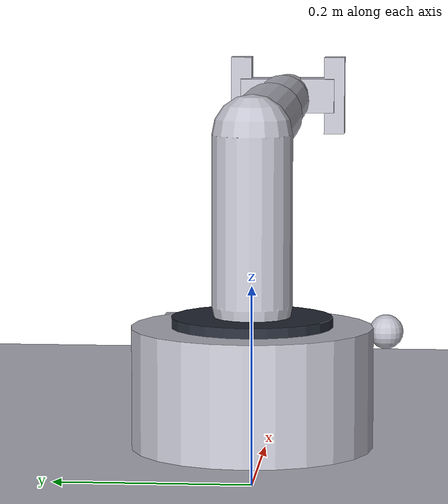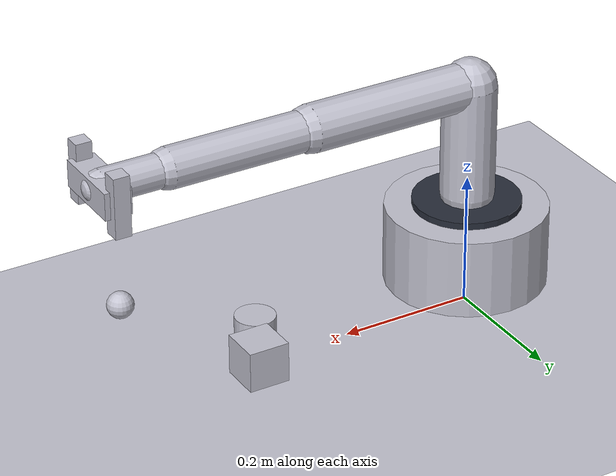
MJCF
<mujoco model="stable_manipulator">
    <compiler angle="degree" inertiafromgeom="true" balanceinertia="true" autolimits="true"/>
    <option timestep="0.002" gravity="0 0 -9.81" iterations="50" solver="CG" tolerance="1e-8"/>

    <visual>
        <global offwidth="1280" offheight="960"/>
        <map znear="0.01" zfar="60" fogstart="8" fogend="30"/>
        <quality shadowsize="2048"/>
    </visual>

    <default>
        <joint damping="1.2" armature="0.02" limited="true" frictionloss="0.02"/>
        <geom condim="3" friction="0.8 0.05 0.02" rgba="0.75 0.75 0.8 1"/>
        <motor ctrllimited="true" ctrlrange="-1 1" forcerange="-5 5"/>
    </default>

    <asset>
        <texture type="skybox" builtin="gradient" rgb1="0.3 0.45 0.7" rgb2="0.08 0.12 0.18" width="512" height="512"/>
        <texture name="texplane" type="2d" builtin="checker" rgb1="0.18 0.22 0.28" rgb2="0.10 0.13 0.18" width="256" height="256" mark="cross" markrgb="0.9 0.9 0.9"/>
        <material name="matplane" texture="texplane" texuniform="true" reflectance="0.15"/>
        <material name="matbase" rgba="0.27 0.30 0.35 1"/>
        <material name="matlink1" rgba="0.86 0.32 0.28 1"/>
        <material name="matlink2" rgba="0.27 0.62 0.88 1"/>
        <material name="matlink3" rgba="0.30 0.76 0.48 1"/>
        <material name="matgripper" rgba="0.96 0.83 0.26 1"/>
        <material name="matobject" rgba="0.96 0.40 0.90 1"/>
    </asset>

    <worldbody>
        <light directional="true" diffuse="0.5 0.5 0.5" specular="0.15 0.15 0.15" pos="0 0 5" dir="0 0 -1"/>
        <light directional="true" diffuse="0.7 0.7 0.7" pos="2 2 3" dir="-1 -1 -1"/>

        <geom name="ground" type="plane" size="3 3 0.25" pos="0 0 0" material="matplane" condim="3"/>

        <body name="base" pos="0 0 0.10">
            <geom name="base_plate" type="cylinder" size="0.12 0.06" material="matbase"/>
            <geom name="base_ring" type="cylinder" size="0.08 0.03" pos="0 0 0.04" rgba="0.15 0.17 0.22 1"/>

            <body name="link1" pos="0 0 0.08">
                <joint name="shoulder_pan" type="hinge" axis="0 0 1" range="-180 180"/>
                <geom name="link1_geom" type="capsule" fromto="0 0 0 0 0 0.17" size="0.04" material="matlink1"/>

                <body name="link2" pos="0 0 0.17">
                    <joint name="shoulder_lift" type="hinge" axis="0 1 0" range="-90 90"/>
                    <geom name="link2_geom" type="capsule" fromto="0 0 0 0.26 0 0" size="0.035" material="matlink2"/>

                    <body name="link3" pos="0.26 0 0">
                        <joint name="elbow" type="hinge" axis="0 1 0" range="-150 150"/>
                        <geom name="link3_geom" type="capsule" fromto="0 0 0 0.22 0 0" size="0.03" material="matlink3"/>

                        <body name="wrist" pos="0.22 0 0">
                            <joint name="wrist_roll" type="hinge" axis="1 0 0" range="-180 180"/>
                            <geom name="wrist_geom" type="capsule" fromto="0 0 0 0.10 0 0" size="0.025" material="matgripper"/>

                            <body name="gripper_base" pos="0.10 0 0">
                                <geom name="gripper_base_geom" type="box" size="0.02 0.055 0.02" material="matgripper"/>

                                <body name="finger_left" pos="0 0.055 0">
                                    <joint name="finger_left_joint" type="slide" axis="0 1 0" range="0 0.03"/>
                                    <geom name="finger_left_geom" type="box" size="0.012 0.012 0.045" material="matgripper"/>
                                </body>

                                <body name="finger_right" pos="0 -0.055 0">
                                    <joint name="finger_right_joint" type="slide" axis="0 -1 0" range="0 0.03"/>
                                    <geom name="finger_right_geom" type="box" size="0.012 0.012 0.045" material="matgripper"/>
                                </body>
                            </body>
                        </body>
                    </body>
                </body>
            </body>
        </body>

        <body name="target_object1" pos="0.40 0.10 0.08">
            <joint name="target_free1" type="free"/>
            <geom name="object1_geom" type="box" size="0.03 0.03 0.03" material="matobject" mass="0.08"/>
        </body>

        <body name="target_object2" pos="0.50 -0.12 0.08">
            <joint name="target_free2" type="free"/>
            <geom name="object2_geom" type="sphere" size="0.02" material="matobject" mass="0.05"/>
        </body>

        <!-- Static obstacle to create varied scenes -->
        <body name="obstacle" pos="0.35 0.0 0.02">
            <geom name="obstacle_geom" type="cylinder" size="0.03 0.06" pos="0 0 0" material="matlink3"/>
        </body>

    </worldbody>

    <actuator>
        <motor name="act_shoulder_pan" joint="shoulder_pan" gear="60"/>
        <motor name="act_shoulder_lift" joint="shoulder_lift" gear="60"/>
        <motor name="act_elbow" joint="elbow" gear="50"/>
        <motor name="act_wrist_roll" joint="wrist_roll" gear="15"/>
        <motor name="act_finger_left" joint="finger_left_joint" gear="25"/>
        <motor name="act_finger_right" joint="finger_right_joint" gear="25"/>
    </actuator>
</mujoco>
